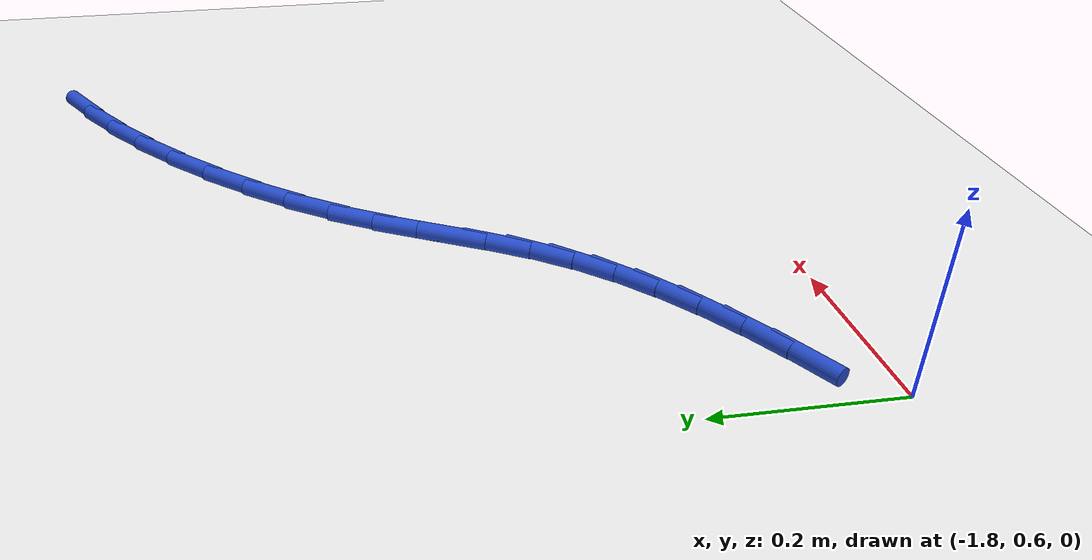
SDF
<sdf version="1.6">
 <world name="default">
  <model name="ground_plane">
   <static>1</static>
   <link name="link">
    <collision name="collision">
     <geometry><plane><normal>0 0 1</normal><size>100 100</size></plane></geometry>
     <surface><friction><ode><mu>100</mu><mu2>50</mu2></ode></friction></surface>
    </collision>
    <visual name="visual">
     <cast_shadows>0</cast_shadows>
     <geometry><plane><normal>0 0 1</normal><size>100 100</size></plane></geometry>
     <material>
      <script><uri>file://media/materials/scripts/gazebo.material</uri><name>Gazebo/WhiteGlow</name></script>
     </material>
    </visual>
   </link>
  </model>
  <model name="line">
   <link name="link_38">
    <pose>-1.0548727675437244 1.4032739877403957 0.01 0 1.57 0.5367361043253207</pose>
    <collision name="collision">
     <geometry><cylinder><radius>0.01</radius><length>0.08</length></cylinder></geometry>
    </collision>
    <visual name="visual">
     <material>
      <script><name>Gazebo/Blue</name><uri>file://media/materials/scripts/gazebo.material</uri></script>
     </material>
     <geometry><cylinder><radius>0.01</radius><length>0.08</length></cylinder></geometry>
    </visual>
   </link>
   <link name="link_39">
    <pose>-1.1072550835779433 1.372106425597668 0.01 0 1.57 0.6070751255620307</pose>
    <collision name="collision">
     <geometry><cylinder><radius>0.01</radius><length>0.08</length></cylinder></geometry>
    </collision>
    <visual name="visual">
     <material>
      <script><name>Gazebo/Blue</name><uri>file://media/materials/scripts/gazebo.material</uri></script>
     </material>
     <geometry><cylinder><radius>0.01</radius><length>0.08</length></cylinder></geometry>
    </visual>
   </link>
   <link name="link_40">
    <pose>-1.1591037385137368 1.3360936931524052 0.01 0 1.57 0.6701441258648317</pose>
    <collision name="collision">
     <geometry><cylinder><radius>0.01</radius><length>0.08</length></cylinder></geometry>
    </collision>
    <visual name="visual">
     <material>
      <script><name>Gazebo/Blue</name><uri>file://media/materials/scripts/gazebo.material</uri></script>
     </material>
     <geometry><cylinder><radius>0.01</radius><length>0.08</length></cylinder></geometry>
    </visual>
   </link>
   <link name="link_41">
    <pose>-1.2096879026627 1.2960063100932637 0.01 0 1.57 0.7289534064258657</pose>
    <collision name="collision">
     <geometry><cylinder><radius>0.01</radius><length>0.08</length></cylinder></geometry>
    </collision>
    <visual name="visual">
     <material>
      <script><name>Gazebo/Blue</name><uri>file://media/materials/scripts/gazebo.material</uri></script>
     </material>
     <geometry><cylinder><radius>0.01</radius><length>0.08</length></cylinder></geometry>
    </visual>
   </link>
   <link name="link_42">
    <pose>-1.2582767463364266 1.2526147961089023 0.01 0 1.57 0.7860783375433793</pose>
    <collision name="collision">
     <geometry><cylinder><radius>0.01</radius><length>0.08</length></cylinder></geometry>
    </collision>
    <visual name="visual">
     <material>
      <script><name>Gazebo/Blue</name><uri>file://media/materials/scripts/gazebo.material</uri></script>
     </material>
     <geometry><cylinder><radius>0.01</radius><length>0.08</length></cylinder></geometry>
    </visual>
   </link>
   <link name="link_43">
    <pose>-1.3041394398465114 1.2066896708879775 0.01 0 1.57 0.8439643957295785</pose>
    <collision name="collision">
     <geometry><cylinder><radius>0.01</radius><length>0.08</length></cylinder></geometry>
    </collision>
    <visual name="visual">
     <material>
      <script><name>Gazebo/Blue</name><uri>file://media/materials/scripts/gazebo.material</uri></script>
     </material>
     <geometry><cylinder><radius>0.01</radius><length>0.08</length></cylinder></geometry>
    </visual>
   </link>
   <link name="link_44">
    <pose>-1.3465451535045485 1.1590014541191467 0.01 0 1.57 0.9052245902009057</pose>
    <collision name="collision">
     <geometry><cylinder><radius>0.01</radius><length>0.08</length></cylinder></geometry>
    </collision>
    <visual name="visual">
     <material>
      <script><name>Gazebo/Blue</name><uri>file://media/materials/scripts/gazebo.material</uri></script>
     </material>
     <geometry><cylinder><radius>0.01</radius><length>0.08</length></cylinder></geometry>
    </visual>
   </link>
   <link name="link_45">
    <pose>-1.3847630576221333 1.1103206654910676 0.01 0 1.57 0.9729860494426007</pose>
    <collision name="collision">
     <geometry><cylinder><radius>0.01</radius><length>0.08</length></cylinder></geometry>
    </collision>
    <visual name="visual">
     <material>
      <script><name>Gazebo/Blue</name><uri>file://media/materials/scripts/gazebo.material</uri></script>
     </material>
     <geometry><cylinder><radius>0.01</radius><length>0.08</length></cylinder></geometry>
    </visual>
   </link>
   <link name="link_46">
    <pose>-1.4180623225108593 1.061417824692398 0.01 0 1.57 1.0449753213320043</pose>
    <collision name="collision">
     <geometry><cylinder><radius>0.01</radius><length>0.08</length></cylinder></geometry>
    </collision>
    <visual name="visual">
     <material>
      <script><name>Gazebo/Blue</name><uri>file://media/materials/scripts/gazebo.material</uri></script>
     </material>
     <geometry><cylinder><radius>0.01</radius><length>0.08</length></cylinder></geometry>
    </visual>
   </link>
   <link name="link_47">
    <pose>-1.4461297514862614 1.013052144586911 0.01 0 1.57 1.090087595716561</pose>
    <collision name="collision">
     <geometry><cylinder><radius>0.01</radius><length>0.08</length></cylinder></geometry>
    </collision>
    <visual name="visual">
     <material>
      <script><name>Gazebo/Blue</name><uri>file://media/materials/scripts/gazebo.material</uri></script>
     </material>
     <geometry><cylinder><radius>0.01</radius><length>0.08</length></cylinder></geometry>
    </visual>
   </link>
   <link name="link_48">
    <pose>-1.4707059578086061 0.9659272340291873 0.01 0 1.57 1.092093563156112</pose>
    <collision name="collision">
     <geometry><cylinder><radius>0.01</radius><length>0.08</length></cylinder></geometry>
    </collision>
    <visual name="visual">
     <material>
      <script><name>Gazebo/Blue</name><uri>file://media/materials/scripts/gazebo.material</uri></script>
     </material>
     <geometry><cylinder><radius>0.01</radius><length>0.08</length></cylinder></geometry>
    </visual>
   </link>
   <link name="link_49">
    <pose>-1.4941618435281392 0.9207296376932786 0.01 0 1.57 1.0450708413862715</pose>
    <collision name="collision">
     <geometry><cylinder><radius>0.01</radius><length>0.08</length></cylinder></geometry>
    </collision>
    <visual name="visual">
     <material>
      <script><name>Gazebo/Blue</name><uri>file://media/materials/scripts/gazebo.material</uri></script>
     </material>
     <geometry><cylinder><radius>0.01</radius><length>0.08</length></cylinder></geometry>
    </visual>
   </link>
   <link name="link_50">
    <pose>-1.5188684780638124 0.878145895721964 0.01 0 1.57 0.9538484667478597</pose>
    <collision name="collision">
     <geometry><cylinder><radius>0.01</radius><length>0.08</length></cylinder></geometry>
    </collision>
    <visual name="visual">
     <material>
      <script><name>Gazebo/Blue</name><uri>file://media/materials/scripts/gazebo.material</uri></script>
     </material>
     <geometry><cylinder><radius>0.01</radius><length>0.08</length></cylinder></geometry>
    </visual>
   </link>
   <link name="link_51">
    <pose>-1.5468450535640592 0.838704009540155 0.01 0 1.57 0.8568633004463845</pose>
    <collision name="collision">
     <geometry><cylinder><radius>0.01</radius><length>0.08</length></cylinder></geometry>
    </collision>
    <visual name="visual">
     <material>
      <script><name>Gazebo/Blue</name><uri>file://media/materials/scripts/gazebo.material</uri></script>
     </material>
     <geometry><cylinder><radius>0.01</radius><length>0.08</length></cylinder></geometry>
    </visual>
   </link>
   <link name="link_52">
    <pose>-1.5784758116451472 0.8021953516885841 0.01 0 1.57 0.7681025868073775</pose>
    <collision name="collision">
     <geometry><cylinder><radius>0.01</radius><length>0.08</length></cylinder></geometry>
    </collision>
    <visual name="visual">
     <material>
      <script><name>Gazebo/Blue</name><uri>file://media/materials/scripts/gazebo.material</uri></script>
     </material>
     <geometry><cylinder><radius>0.01</radius><length>0.08</length></cylinder></geometry>
    </visual>
   </link>
   <link name="link_53">
    <pose>-1.6136704975366511 0.7681975098031826 0.01 0 1.57 0.6899247803754159</pose>
    <collision name="collision">
     <geometry><cylinder><radius>0.01</radius><length>0.08</length></cylinder></geometry>
    </collision>
    <visual name="visual">
     <material>
      <script><name>Gazebo/Blue</name><uri>file://media/materials/scripts/gazebo.material</uri></script>
     </material>
     <geometry><cylinder><radius>0.01</radius><length>0.08</length></cylinder></geometry>
    </visual>
   </link>
   <link name="link_54">
    <pose>-1.6523388056232042 0.7362880486116322 0.01 0 1.57 0.62349578380004</pose>
    <collision name="collision">
     <geometry><cylinder><radius>0.01</radius><length>0.08</length></cylinder></geometry>
    </collision>
    <visual name="visual">
     <material>
      <script><name>Gazebo/Blue</name><uri>file://media/materials/scripts/gazebo.material</uri></script>
     </material>
     <geometry><cylinder><radius>0.01</radius><length>0.08</length></cylinder></geometry>
    </visual>
   </link>
   <link name="link_55">
    <pose>-1.694390430289438 0.7060445328416161 0.01 0 1.57 0.5689914432230724</pose>
    <collision name="collision">
     <geometry><cylinder><radius>0.01</radius><length>0.08</length></cylinder></geometry>
    </collision>
    <visual name="visual">
     <material>
      <script><name>Gazebo/Blue</name><uri>file://media/materials/scripts/gazebo.material</uri></script>
     </material>
     <geometry><cylinder><radius>0.01</radius><length>0.08</length></cylinder></geometry>
    </visual>
   </link>
   <link name="link_56">
    <pose>-1.7397350659199842 0.6770445272208157 0.01 0 1.57 0.5259147013051572</pose>
    <collision name="collision">
     <geometry><cylinder><radius>0.01</radius><length>0.08</length></cylinder></geometry>
    </collision>
    <visual name="visual">
     <material>
      <script><name>Gazebo/Blue</name><uri>file://media/materials/scripts/gazebo.material</uri></script>
     </material>
     <geometry><cylinder><radius>0.01</radius><length>0.08</length></cylinder></geometry>
    </visual>
   </link>
  </model>
 </world>
</sdf>
